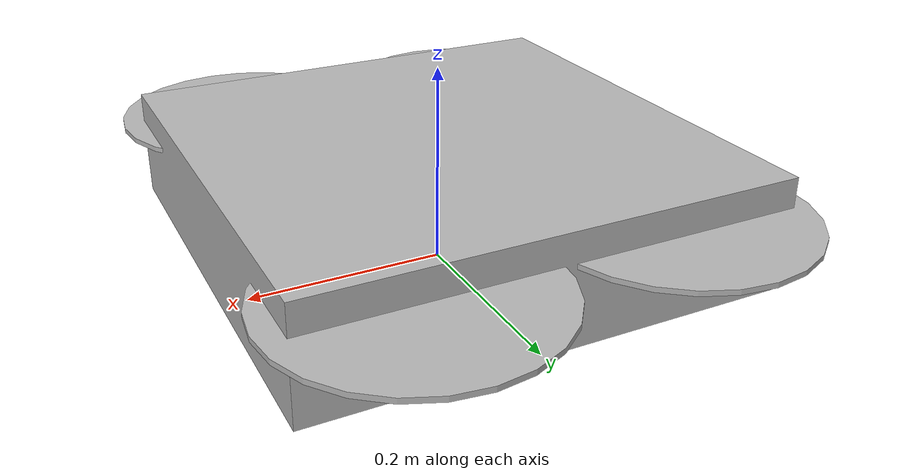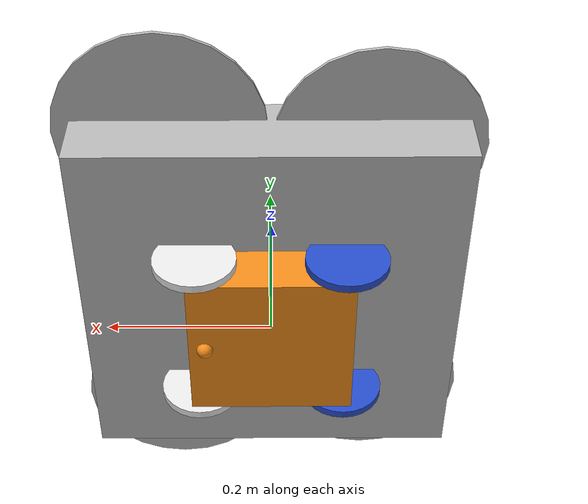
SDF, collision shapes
<?xml version="1.0"?>
<sdf version='1.6'>
  <model name='luffy'>
    <link name='base_link'>
      <pose frame=''>0 0 0 0 -0 0</pose>
      <inertial>
        <pose frame=''>1e-06 -0 -0.000651 0 -0 0</pose>
        <mass>0.510673</mass>
        <inertia>
          <ixx>0.000722388</ixx>
          <ixy>1.63791e-24</ixy>
          <ixz>-5.50202e-07</ixz>
          <iyy>0.00158624</iyy>
          <iyz>-1.38686e-13</iyz>
          <izz>0.00223359</izz>
        </inertia>
      </inertial>
      <collision name='base_link_collision'>
        <pose frame=''>0 0 0 0 -0 0</pose>
        <geometry>
          <box>
            <size>0.2 0.2 0.08</size>
          </box>
        </geometry>
        <surface>
          <contact>
            <ode/>
          </contact>
          <friction>
            <ode>
              <mu>0</mu>
              <mu2>0</mu2>
            </ode>
          </friction>
        </surface>
      </collision>
      <collision name='base_link_collision_1'>
        <pose frame=''>0.08 0 -0.04 0 -0 0</pose>
        <geometry>
          <sphere>
            <radius>0.01</radius>
          </sphere>
        </geometry>
        <surface>
          <contact>
            <ode/>
          </contact>
          <friction>
            <ode>
              <mu>0</mu>
              <mu2>0</mu2>
            </ode>
          </friction>
        </surface>
      </collision>

      <visual name='base_link_visual'>
        <pose frame=''>0 0 0 0 -0 0</pose>
        <geometry>
          <box>
            <size>0.2 0.2 0.08</size>
          </box>
        </geometry>
        <material>
          <script>
            <name>Gazebo/Orange</name>
            <uri>file://media/materials/scripts/gazebo.material</uri>
          </script>
        </material>
      </visual>
      <visual name='base_link_fixed_joint_lump__caster_visual_1'>
        <pose frame=''>0.08 0 -0.04 0 -0 0</pose>
        <geometry>
          <sphere>
            <radius>0.01</radius>
          </sphere>
        </geometry>
      </visual>
      <velocity_decay/>
      <gravity>1</gravity>
      <velocity_decay/>
      <sensor name='frontLeftCamera' type='camera'>
        <update_rate>0.4</update_rate>
        <camera name='frontLeftCamera'>
          <horizontal_fov>1.5708</horizontal_fov>
          <image>
            <width>1280</width>
            <height>720</height>
            <format>R8G8B8</format>
          </image>
          <clip>
            <near>0.01</near>
            <far>100</far>
          </clip>
          <noise>
            <type>gaussian</type>
            <mean>0</mean>
            <stddev>0</stddev>
          </noise>
        </camera>
        <plugin name='camera_plugin' filename='libgazebo_ros_camera.so'>
          <alwaysOn>1</alwaysOn>
          <updateRate>0.4</updateRate>
          <cameraName>sensors/frontLeftCamera</cameraName>
          <imageTopicName>image</imageTopicName>
          <cameraInfoTopicName>info</cameraInfoTopicName>
          <frameName>frontLeftCamera</frameName>
        </plugin>
        <pose>-0.25 -0.05 0.1 0 -0 3.14159</pose>
      </sensor>
      <sensor name='frontRightCamera' type='camera'>
        <update_rate>0.4</update_rate>
        <camera name='frontRightCamera'>
          <horizontal_fov>1.5708</horizontal_fov>
          <image>
            <width>1280</width>
            <height>720</height>
            <format>R8G8B8</format>
          </image>
          <clip>
            <near>0.01</near>
            <far>100</far>
          </clip>
          <noise>
            <type>gaussian</type>
            <mean>0</mean>
            <stddev>0</stddev>
          </noise>
        </camera>
        <plugin name='camera_plugin' filename='libgazebo_ros_camera.so'>
          <alwaysOn>1</alwaysOn>
          <updateRate>0.4</updateRate>
          <cameraName>sensors/frontRightCamera</cameraName>
          <imageTopicName>image</imageTopicName>
          <cameraInfoTopicName>info</cameraInfoTopicName>
          <frameName>frontRightCamera</frameName>
        </plugin>
        <pose>-0.25 0.05 0.1 0 -0 3.14159</pose>
      </sensor>
      <sensor name='frontUltrasonic' type='ray'>
        <update_rate>1</update_rate>
        <visualize>1</visualize>
        <ray>
          <scan>
            <horizontal>
              <samples>10</samples>
              <resolution>1</resolution>
              <min_angle>-0.05</min_angle>
              <max_angle>0.05</max_angle>
            </horizontal>
          </scan>
          <range>
            <min>0.02</min>
            <max>6</max>
            <resolution>0.03</resolution>
          </range>
        </ray>
        <plugin name='ultrasonic_plugin' filename='libgazebo_ros_range.so'>
          <gaussianNoise>0.0</gaussianNoise>
          <alwaysOn>1</alwaysOn>
          <updateRate>1</updateRate>
          <topicName>sensors/frontUltrasonic</topicName>
          <frameName>frontUltrasonic</frameName>
          <radiation>ultrasound</radiation>
          <fov>0.05--0.05</fov>
          <visualize>1</visualize>
        </plugin>
        <pose>-0.13 0 0 0 -0 3.14159</pose>
      </sensor>
      <sensor name='leftUltrasonic' type='ray'>
        <update_rate>1</update_rate>
        <visualize>1</visualize>
        <ray>
          <scan>
            <horizontal>
              <samples>10</samples>
              <resolution>1</resolution>
              <min_angle>-0.05</min_angle>
              <max_angle>0.05</max_angle>
            </horizontal>
          </scan>
          <range>
            <min>0.02</min>
            <max>6</max>
            <resolution>0.03</resolution>
          </range>
        </ray>
        <plugin name='ultrasonic_plugin' filename='libgazebo_ros_range.so'>
          <gaussianNoise>0.0</gaussianNoise>
          <alwaysOn>1</alwaysOn>
          <updateRate>1</updateRate>
          <topicName>sensors/leftUltrasonic</topicName>
          <frameName>leftUltrasonic</frameName>
          <radiation>ultrasound</radiation>
          <fov>0.05--0.05</fov>
          <visualize>1</visualize>
        </plugin>
        <pose>-0.13 -0.075 0 0 -0 2.61799</pose>
      </sensor>
      <sensor name='rightUltrasonic' type='ray'>
        <update_rate>1</update_rate>
        <visualize>1</visualize>
        <ray>
          <scan>
            <horizontal>
              <samples>10</samples>
              <resolution>1</resolution>
              <min_angle>-0.05</min_angle>
              <max_angle>0.05</max_angle>
            </horizontal>
          </scan>
          <range>
            <min>0.02</min>
            <max>6</max>
            <resolution>0.03</resolution>
          </range>
        </ray>
        <plugin name='ultrasonic_plugin' filename='libgazebo_ros_range.so'>
          <gaussianNoise>0.0</gaussianNoise>
          <alwaysOn>1</alwaysOn>
          <updateRate>1</updateRate>
          <topicName>sensors/rightUltrasonic</topicName>
          <frameName>rightUltrasonic</frameName>
          <radiation>ultrasound</radiation>
          <fov>0.05--0.05</fov>
          <visualize>1</visualize>
        </plugin>
        <pose>-0.13 0.075 0 0 0 -2.61799</pose>
      </sensor>
      <sensor name='visualCamera' type='camera'>
        <update_rate>15</update_rate>
        <camera name='visualCamera'>
          <horizontal_fov>1.75</horizontal_fov>
          <image>
            <width>1280</width>
            <height>720</height>
            <format>R8G8B8</format>
          </image>
          <clip>
            <near>0.001</near>
            <far>100</far>
          </clip>
          <noise>
            <type>gaussian</type>
            <mean>0</mean>
            <stddev>0</stddev>
          </noise>
        </camera>
        <plugin name='camera_plugin' filename='libgazebo_ros_camera.so'>
          <alwaysOn>1</alwaysOn>
          <updateRate>15</updateRate>
          <cameraName>sensors/visualCamera</cameraName>
          <imageTopicName>image</imageTopicName>
          <cameraInfoTopicName>info</cameraInfoTopicName>
          <frameName>visualCamera</frameName>
        </plugin>
        <pose>1.2 0 0.5 0 0.2 -3.13319</pose>
      </sensor>
    </link>
    <link name='left_wheel'>
      <pose frame=''>-0.09 0.105 0 0 -0 0</pose>
      <inertial>
        <pose frame=''>0 0 0 0 -0 0</pose>
        <mass>0.00333333</mass>
        <inertia>
          <ixx>4.16667e-06</ixx>
          <ixy>0</ixy>
          <ixz>0</ixz>
          <iyy>2.16049e-06</iyy>
          <iyz>0</iyz>
          <izz>2.16049e-06</izz>
        </inertia>
      </inertial>
      <collision name='left_wheel_collision'>
        <pose frame=''>0 0 0 1.57079 -0 0</pose>
        <geometry>
          <cylinder>
            <length>0.01</length>
            <radius>0.05</radius>
          </cylinder>
        </geometry>
        <surface>
          <contact>
            <ode/>
          </contact>
          <friction>
            <ode>
              <mu>1</mu>
              <mu2>1</mu2>
            </ode>
          </friction>
        </surface>
      </collision>
      <visual name='left_wheel_visual'>
        <pose frame=''>0 0 0 1.57079 -0 0</pose>
        <geometry>
          <cylinder>
            <length>0.01</length>
            <radius>0.05</radius>
          </cylinder>
        </geometry>
        <material>
          <script>
            <name>Gazebo/Blue</name>
            <uri>file://media/materials/scripts/gazebo.material</uri>
          </script>
        </material>
      </visual>
      <gravity>1</gravity>
      <velocity_decay/>
    </link>
    <joint name='left_wheel_joint' type='revolute'>
      <child>left_wheel</child>
      <parent>base_link</parent>
      <axis>
        <xyz>0 1 0</xyz>
        <limit>
          <effort>50</effort>
          <velocity>50</velocity>
          <lower>-1e+16</lower>
          <upper>1e+16</upper>
        </limit>
        <dynamics>
          <damping>0.1</damping>
          <friction>0.1</friction>
          <spring_reference>0</spring_reference>
          <spring_stiffness>0</spring_stiffness>
        </dynamics>
        <use_parent_model_frame>0</use_parent_model_frame>
      </axis>
    </joint>

    <link name='right_wheel'>
      <pose frame=''>-0.09 -0.105 0 0 -0 0</pose>
      <inertial>
        <pose frame=''>0 0 0 0 -0 0</pose>
        <mass>0.00333333</mass>
        <inertia>
          <ixx>4.16667e-06</ixx>
          <ixy>0</ixy>
          <ixz>0</ixz>
          <iyy>2.16049e-06</iyy>
          <iyz>0</iyz>
          <izz>2.16049e-06</izz>
        </inertia>
      </inertial>
      <collision name='right_wheel_collision'>
        <pose frame=''>0 0 0 1.57079 -0 0</pose>
        <geometry>
          <cylinder>
            <length>0.01</length>
            <radius>0.05</radius>
          </cylinder>
        </geometry>
        <surface>
          <contact>
            <ode/>
          </contact>
          <friction>
            <ode>
              <mu>1</mu>
              <mu2>1</mu2>
            </ode>
          </friction>
        </surface>
      </collision>
      <visual name='right_wheel_visual'>
        <pose frame=''>0 0 0 1.57079 -0 0</pose>
        <geometry>
          <cylinder>
            <length>0.01</length>
            <radius>0.05</radius>
          </cylinder>
        </geometry>
        <material>
          <script>
            <name>Gazebo/Blue</name>
            <uri>file://media/materials/scripts/gazebo.material</uri>
          </script>
        </material>
      </visual>
      <gravity>1</gravity>
      <velocity_decay/>
    </link>
    <joint name='right_wheel_joint' type='revolute'>
      <child>right_wheel</child>
      <parent>base_link</parent>
      <axis>
        <xyz>0 1 0</xyz>
        <limit>
          <effort>50</effort>
          <velocity>50</velocity>
          <lower>-1e+16</lower>
          <upper>1e+16</upper>
        </limit>
        <dynamics>
          <damping>0.1</damping>
          <friction>0.1</friction>
          <spring_reference>0</spring_reference>
          <spring_stiffness>0</spring_stiffness>
        </dynamics>
        <use_parent_model_frame>0</use_parent_model_frame>
      </axis>
    </joint>

    <link name='left_wheel2'>
      <pose frame=''>0.09 0.105 0 0 -0 0</pose>
      <inertial>
        <pose frame=''>0 0 0 0 -0 0</pose>
        <mass>0.00333333</mass>
        <inertia>
          <ixx>4.16667e-06</ixx>
          <ixy>0</ixy>
          <ixz>0</ixz>
          <iyy>2.16049e-06</iyy>
          <iyz>0</iyz>
          <izz>2.16049e-06</izz>
        </inertia>
      </inertial>
      <collision name='left_wheel_collision2'>
        <pose frame=''>0 0 0 1.57079 -0 0</pose>
        <geometry>
          <cylinder>
            <length>0.01</length>
            <radius>0.05</radius>
          </cylinder>
        </geometry>
        <surface>
          <contact>
            <ode/>
          </contact>
          <friction>
            <ode>
              <mu>1</mu>
              <mu2>1</mu2>
            </ode>
          </friction>
        </surface>
      </collision>
      <visual name='left_wheel_visual2'>
        <pose frame=''>0 0 0 1.57079 -0 0</pose>
        <geometry>
          <cylinder>
            <length>0.01</length>
            <radius>0.05</radius>
          </cylinder>
        </geometry>
        <material>
          <script>
            <name>Gazebo/White</name>
            <uri>file://media/materials/scripts/gazebo.material</uri>
          </script>
        </material>
      </visual>
      <gravity>1</gravity>
      <velocity_decay/>
    </link>
    <joint name='left_wheel_joint2' type='revolute'>
      <child>left_wheel2</child>
      <parent>base_link</parent>
      <axis>
        <xyz>0 1 0</xyz>
        <limit>
          <effort>50</effort>
          <velocity>50</velocity>
          <lower>-1e+16</lower>
          <upper>1e+16</upper>
        </limit>
        <dynamics>
          <damping>0.1</damping>
          <friction>0.1</friction>
          <spring_reference>0</spring_reference>
          <spring_stiffness>0</spring_stiffness>
        </dynamics>
        <use_parent_model_frame>0</use_parent_model_frame>
      </axis>
    </joint>

    <link name='right_wheel2'>
      <pose frame=''>0.09 -0.105 0 0 -0 0</pose>
      <inertial>
        <pose frame=''>0 0 0 0 -0 0</pose>
        <mass>0.00333333</mass>
        <inertia>
          <ixx>4.16667e-06</ixx>
          <ixy>0</ixy>
          <ixz>0</ixz>
          <iyy>2.16049e-06</iyy>
          <iyz>0</iyz>
          <izz>2.16049e-06</izz>
        </inertia>
      </inertial>
      <collision name='right_wheel_collision2'>
        <pose frame=''>0 0 0 1.57079 -0 0</pose>
        <geometry>
          <cylinder>
            <length>0.01</length>
            <radius>0.05</radius>
          </cylinder>
        </geometry>
        <surface>
          <contact>
            <ode/>
          </contact>
          <friction>
            <ode>
              <mu>1</mu>
              <mu2>1</mu2>
            </ode>
          </friction>
        </surface>
      </collision>
      <visual name='right_wheel_visual2'>
        <pose frame=''>0 0 0 1.57079 -0 0</pose>
        <geometry>
          <cylinder>
            <length>0.01</length>
            <radius>0.05</radius>
          </cylinder>
        </geometry>
        <material>
          <script>
            <name>Gazebo/White</name>
            <uri>file://media/materials/scripts/gazebo.material</uri>
          </script>
        </material>
      </visual>
      <gravity>1</gravity>
      <velocity_decay/>
    </link>
    <joint name='right_wheel_joint2' type='revolute'>
      <child>right_wheel2</child>
      <parent>base_link</parent>
      <axis>
        <xyz>0 1 0</xyz>
        <limit>
          <effort>50</effort>
          <velocity>50</velocity>
          <lower>-1e+16</lower>
          <upper>1e+16</upper>
        </limit>
        <dynamics>
          <damping>0.1</damping>
          <friction>0.1</friction>
          <spring_reference>0</spring_reference>
          <spring_stiffness>0</spring_stiffness>
        </dynamics>
        <use_parent_model_frame>0</use_parent_model_frame>
      </axis>
    </joint>

    <plugin name='skid_steer_drive_controller' filename='libgazebo_ros_skid_steer_drive.so'>
      <updateRate>100</updateRate>
      <robotNamespace>control/ground</robotNamespace>
      <leftFrontJoint>left_wheel_joint</leftFrontJoint>
      <rightFrontJoint>right_wheel_joint</rightFrontJoint>
      <leftRearJoint>left_wheel_joint2</leftRearJoint>
      <rightRearJoint>right_wheel_joint2</rightRearJoint>
      <wheelSeparation>0.16666666666666669</wheelSeparation>
      <wheelDiameter>0.1</wheelDiameter>
      <robotBaseFrame>base_link</robotBaseFrame>
      <torque>50</torque>
      <broadcastTF>1</broadcastTF>
      <commandTopic>cmd</commandTopic>
      <odometryTopic>odom</odometryTopic>
      <odometryFrame>odom</odometryFrame>
      <covariance_x>0.0001</covariance_x>
      <covariance_y>0.0001</covariance_y>
      <covariance_yaw>0.0001</covariance_yaw>
    </plugin>
    <include>
      <uri>model://iris</uri>
      <pose>0 0 0.08 0 0 0</pose>
    </include>

    <joint name='luffy_iris_joint' type='fixed'>
      <parent>base_link</parent>
      <child>iris::base_link</child>
      <pose>0 0 0 0 0 0</pose>
      <physics>
        <ode>
          <limit>
            <cfm>0</cfm>
            <erp>0.2</erp>
          </limit>
          <suspension>
            <cfm>0</cfm>
            <erp>0.2</erp>
          </suspension>
        </ode>
      </physics>
    </joint>

    <frame name='FrontLeftCamera2GroundCore' attached_to='frame_link'>
      <pose>-0.25 -0.05 0.1 0 -0 3.14159</pose>
    </frame>
    <frame name='frontLeftCamera' attached_to='FrontLeftCamera2GroundCore'/>
    <frame name='FrontRightCamera2GroundCore' attached_to='frame_link'>
      <pose>-0.25 0.05 0.1 0 -0 3.14159</pose>
    </frame>
    <frame name='frontRightCamera' attached_to='FrontRightCamera2GroundCore'/>
    <frame name='FrontUltrasonic2GroundCore' attached_to='frame_link'>
      <pose>-0.13 0 0 0 -0 3.14159</pose>
    </frame>
    <frame name='frontUltrasonic' attached_to='FrontUltrasonic2GroundCore'/>
    <frame name='LeftUltrasonic2GroundCore' attached_to='frame_link'>
      <pose>-0.13 -0.075 0 0 -0 2.61799</pose>
    </frame>
    <frame name='leftUltrasonic' attached_to='LeftUltrasonic2GroundCore'/>
    <frame name='RightUltrasonic2GroundCore' attached_to='frame_link'>
      <pose>-0.13 0.075 0 0 -0 -2.618</pose>
    </frame>
    <frame name='rightUltrasonic' attached_to='RightUltrasonic2GroundCore'/>
    <frame name='visualCamera_joint' attached_to='frame_link'>
      <pose>1.2 0 0.5 0 0.2 -3.13319</pose>
    </frame>
    <frame name='visualCamera' attached_to='visualCamera_joint'/>
    <frame name='frame_joint' attached_to='base_link'>
      <pose>0 0 0 0 -0 0</pose>
    </frame>
    <frame name='frame_link' attached_to='frame_joint'/>
  </model>
</sdf>

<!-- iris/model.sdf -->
<!-- DO NOT EDIT: Generated from iris.sdf.jinja -->
<sdf version='1.6'>
  <model name='iris'>
    <link name='base_link'>
      <pose>0 0 0 0 0 0</pose>
      <inertial>
        <pose>0 0 0 0 0 0</pose>
        <mass>1.5</mass>
        <inertia>
          <ixx>0.029125</ixx>
          <ixy>0</ixy>
          <ixz>0</ixz>
          <iyy>0.029125</iyy>
          <iyz>0</iyz>
          <izz>0.055225</izz>
        </inertia>
      </inertial>
      <collision name='base_link_inertia_collision'>
        <pose>0 0 0 0 0 0</pose>
        <geometry>
          <box>
            <size>0.47 0.47 0.11</size>
          </box>
        </geometry>
        <surface>
          <contact>
            <ode>
              <min_depth>0.001</min_depth>
              <max_vel>0</max_vel>
            </ode>
          </contact>
          <friction>
            <ode/>
          </friction>
        </surface>
      </collision>
      <visual name='base_link_inertia_visual'>
        <pose>0 0 0 0 0 0</pose>
        <geometry>
          <mesh>
            <scale>1 1 1</scale>
            <uri>model://iris/meshes/iris.stl</uri>
          </mesh>
        </geometry>
      </visual>
      <gravity>1</gravity>
      <velocity_decay/>
    </link>
    <link name='/imu_link'>
      <pose>0 0 0 0 0 0</pose>
      <inertial>
        <pose>0 0 0 0 0 0</pose>
        <mass>0.015</mass>
        <inertia>
          <ixx>1e-05</ixx>
          <ixy>0</ixy>
          <ixz>0</ixz>
          <iyy>1e-05</iyy>
          <iyz>0</iyz>
          <izz>1e-05</izz>
        </inertia>
      </inertial>
    </link>
    <joint name='/imu_joint' type='revolute'>
      <child>/imu_link</child>
      <parent>base_link</parent>
      <axis>
        <xyz>1 0 0</xyz>
        <limit>
          <lower>0</lower>
          <upper>0</upper>
          <effort>0</effort>
          <velocity>0</velocity>
        </limit>
        <dynamics>
          <spring_reference>0</spring_reference>
          <spring_stiffness>0</spring_stiffness>
        </dynamics>
        <use_parent_model_frame>1</use_parent_model_frame>
      </axis>
    </joint>
    <link name='rotor_0'>
      <pose>0.13 -0.22 0.023 0 0 0</pose>
      <inertial>
        <pose>0 0 0 0 0 0</pose>
        <mass>0.005</mass>
        <inertia>
          <ixx>9.75e-07</ixx>
          <ixy>0</ixy>
          <ixz>0</ixz>
          <iyy>0.000273104</iyy>
          <iyz>0</iyz>
          <izz>0.000274004</izz>
        </inertia>
      </inertial>
      <collision name='rotor_0_collision'>
        <pose>0 0 0 0 0 0</pose>
        <geometry>
          <cylinder>
            <length>0.005</length>
            <radius>0.128</radius>
          </cylinder>
        </geometry>
        <surface>
          <contact>
            <ode/>
          </contact>
          <friction>
            <ode/>
          </friction>
        </surface>
      </collision>
      <visual name='rotor_0_visual'>
        <pose>0 0 0 0 0 0</pose>
        <geometry>
          <mesh>
            <scale>1 1 1</scale>
            <uri>model://iris/meshes/iris_prop_ccw.dae</uri>
          </mesh>
        </geometry>
      </visual>
      <gravity>1</gravity>
      <velocity_decay/>
    </link>
    <joint name='rotor_0_joint' type='revolute'>
      <child>rotor_0</child>
      <parent>base_link</parent>
      <axis>
        <xyz>0 0 1</xyz>
        <limit>
          <lower>-1e+16</lower>
          <upper>1e+16</upper>
        </limit>
        <dynamics>
          <spring_reference>0</spring_reference>
          <spring_stiffness>0</spring_stiffness>
        </dynamics>
        <use_parent_model_frame>1</use_parent_model_frame>
      </axis>
    </joint>
    <link name='rotor_1'>
      <pose>-0.13 0.2 0.023 0 0 0</pose>
      <inertial>
        <pose>0 0 0 0 0 0</pose>
        <mass>0.005</mass>
        <inertia>
          <ixx>9.75e-07</ixx>
          <ixy>0</ixy>
          <ixz>0</ixz>
          <iyy>0.000273104</iyy>
          <iyz>0</iyz>
          <izz>0.000274004</izz>
        </inertia>
      </inertial>
      <collision name='rotor_1_collision'>
        <pose>0 0 0 0 0 0</pose>
        <geometry>
          <cylinder>
            <length>0.005</length>
            <radius>0.128</radius>
          </cylinder>
        </geometry>
        <surface>
          <contact>
            <ode/>
          </contact>
          <friction>
            <ode/>
          </friction>
        </surface>
      </collision>
      <visual name='rotor_1_visual'>
        <pose>0 0 0 0 0 0</pose>
        <geometry>
          <mesh>
            <scale>1 1 1</scale>
            <uri>model://iris/meshes/iris_prop_ccw.dae</uri>
          </mesh>
        </geometry>
      </visual>
      <gravity>1</gravity>
      <velocity_decay/>
    </link>
    <joint name='rotor_1_joint' type='revolute'>
      <child>rotor_1</child>
      <parent>base_link</parent>
      <axis>
        <xyz>0 0 1</xyz>
        <limit>
          <lower>-1e+16</lower>
          <upper>1e+16</upper>
        </limit>
        <dynamics>
          <spring_reference>0</spring_reference>
          <spring_stiffness>0</spring_stiffness>
        </dynamics>
        <use_parent_model_frame>1</use_parent_model_frame>
      </axis>
    </joint>
    <link name='rotor_2'>
      <pose>0.13 0.22 0.023 0 0 0</pose>
      <inertial>
        <pose>0 0 0 0 0 0</pose>
        <mass>0.005</mass>
        <inertia>
          <ixx>9.75e-07</ixx>
          <ixy>0</ixy>
          <ixz>0</ixz>
          <iyy>0.000273104</iyy>
          <iyz>0</iyz>
          <izz>0.000274004</izz>
        </inertia>
      </inertial>
      <collision name='rotor_2_collision'>
        <pose>0 0 0 0 0 0</pose>
        <geometry>
          <cylinder>
            <length>0.005</length>
            <radius>0.128</radius>
          </cylinder>
        </geometry>
        <surface>
          <contact>
            <ode/>
          </contact>
          <friction>
            <ode/>
          </friction>
        </surface>
      </collision>
      <visual name='rotor_2_visual'>
        <pose>0 0 0 0 0 0</pose>
        <geometry>
          <mesh>
            <scale>1 1 1</scale>
            <uri>model://iris/meshes/iris_prop_cw.dae</uri>
          </mesh>
        </geometry>
      </visual>
      <gravity>1</gravity>
      <velocity_decay/>
    </link>
    <joint name='rotor_2_joint' type='revolute'>
      <child>rotor_2</child>
      <parent>base_link</parent>
      <axis>
        <xyz>0 0 1</xyz>
        <limit>
          <lower>-1e+16</lower>
          <upper>1e+16</upper>
        </limit>
        <dynamics>
          <spring_reference>0</spring_reference>
          <spring_stiffness>0</spring_stiffness>
        </dynamics>
        <use_parent_model_frame>1</use_parent_model_frame>
      </axis>
    </joint>
    <link name='rotor_3'>
      <pose>-0.13 -0.2 0.023 0 0 0</pose>
      <inertial>
        <pose>0 0 0 0 0 0</pose>
        <mass>0.005</mass>
        <inertia>
          <ixx>9.75e-07</ixx>
          <ixy>0</ixy>
          <ixz>0</ixz>
          <iyy>0.000273104</iyy>
          <iyz>0</iyz>
          <izz>0.000274004</izz>
        </inertia>
      </inertial>
      <collision name='rotor_3_collision'>
        <pose>0 0 0 0 0 0</pose>
        <geometry>
          <cylinder>
            <length>0.005</length>
            <radius>0.128</radius>
          </cylinder>
        </geometry>
        <surface>
          <contact>
            <ode/>
          </contact>
          <friction>
            <ode/>
          </friction>
        </surface>
      </collision>
      <visual name='rotor_3_visual'>
        <pose>0 0 0 0 0 0</pose>
        <geometry>
          <mesh>
            <scale>1 1 1</scale>
            <uri>model://iris/meshes/iris_prop_cw.dae</uri>
          </mesh>
        </geometry>
      </visual>
      <gravity>1</gravity>
      <velocity_decay/>
    </link>
    <joint name='rotor_3_joint' type='revolute'>
      <child>rotor_3</child>
      <parent>base_link</parent>
      <axis>
        <xyz>0 0 1</xyz>
        <limit>
          <lower>-1e+16</lower>
          <upper>1e+16</upper>
        </limit>
        <dynamics>
          <spring_reference>0</spring_reference>
          <spring_stiffness>0</spring_stiffness>
        </dynamics>
        <use_parent_model_frame>1</use_parent_model_frame>
      </axis>
    </joint>
    <plugin name='rosbag' filename='libgazebo_multirotor_base_plugin.so'>
      <robotNamespace/>
      <linkName>base_link</linkName>
      <rotorVelocitySlowdownSim>10</rotorVelocitySlowdownSim>
    </plugin>
    <plugin name='front_right_motor_model' filename='libgazebo_motor_model.so'>
      <robotNamespace/>
      <jointName>rotor_0_joint</jointName>
      <linkName>rotor_0</linkName>
      <turningDirection>ccw</turningDirection>
      <timeConstantUp>0.0125</timeConstantUp>
      <timeConstantDown>0.025</timeConstantDown>
      <maxRotVelocity>1100</maxRotVelocity>
      <motorConstant>5.84e-06</motorConstant>
      <momentConstant>0.06</momentConstant>
      <commandSubTopic>/gazebo/command/motor_speed</commandSubTopic>
      <motorNumber>0</motorNumber>
      <rotorDragCoefficient>0.000175</rotorDragCoefficient>
      <rollingMomentCoefficient>1e-06</rollingMomentCoefficient>
      <motorSpeedPubTopic>/motor_speed/0</motorSpeedPubTopic>
      <rotorVelocitySlowdownSim>10</rotorVelocitySlowdownSim>
    </plugin>
    <plugin name='back_left_motor_model' filename='libgazebo_motor_model.so'>
      <robotNamespace/>
      <jointName>rotor_1_joint</jointName>
      <linkName>rotor_1</linkName>
      <turningDirection>ccw</turningDirection>
      <timeConstantUp>0.0125</timeConstantUp>
      <timeConstantDown>0.025</timeConstantDown>
      <maxRotVelocity>1100</maxRotVelocity>
      <motorConstant>5.84e-06</motorConstant>
      <momentConstant>0.06</momentConstant>
      <commandSubTopic>/gazebo/command/motor_speed</commandSubTopic>
      <motorNumber>1</motorNumber>
      <rotorDragCoefficient>0.000175</rotorDragCoefficient>
      <rollingMomentCoefficient>1e-06</rollingMomentCoefficient>
      <motorSpeedPubTopic>/motor_speed/1</motorSpeedPubTopic>
      <rotorVelocitySlowdownSim>10</rotorVelocitySlowdownSim>
    </plugin>
    <plugin name='front_left_motor_model' filename='libgazebo_motor_model.so'>
      <robotNamespace/>
      <jointName>rotor_2_joint</jointName>
      <linkName>rotor_2</linkName>
      <turningDirection>cw</turningDirection>
      <timeConstantUp>0.0125</timeConstantUp>
      <timeConstantDown>0.025</timeConstantDown>
      <maxRotVelocity>1100</maxRotVelocity>
      <motorConstant>5.84e-06</motorConstant>
      <momentConstant>0.06</momentConstant>
      <commandSubTopic>/gazebo/command/motor_speed</commandSubTopic>
      <motorNumber>2</motorNumber>
      <rotorDragCoefficient>0.000175</rotorDragCoefficient>
      <rollingMomentCoefficient>1e-06</rollingMomentCoefficient>
      <motorSpeedPubTopic>/motor_speed/2</motorSpeedPubTopic>
      <rotorVelocitySlowdownSim>10</rotorVelocitySlowdownSim>
    </plugin>
    <plugin name='back_right_motor_model' filename='libgazebo_motor_model.so'>
      <robotNamespace/>
      <jointName>rotor_3_joint</jointName>
      <linkName>rotor_3</linkName>
      <turningDirection>cw</turningDirection>
      <timeConstantUp>0.0125</timeConstantUp>
      <timeConstantDown>0.025</timeConstantDown>
      <maxRotVelocity>1100</maxRotVelocity>
      <motorConstant>5.84e-06</motorConstant>
      <momentConstant>0.06</momentConstant>
      <commandSubTopic>/gazebo/command/motor_speed</commandSubTopic>
      <motorNumber>3</motorNumber>
      <rotorDragCoefficient>0.000175</rotorDragCoefficient>
      <rollingMomentCoefficient>1e-06</rollingMomentCoefficient>
      <motorSpeedPubTopic>/motor_speed/3</motorSpeedPubTopic>
      <rotorVelocitySlowdownSim>10</rotorVelocitySlowdownSim>
    </plugin>
    <model name='gps0'>
      <link name='link'>
        <pose>0 0 0 0 0 0</pose>
        <inertial>
          <pose>0 0 0 0 0 0</pose>
          <mass>0.01</mass>
          <inertia>
            <ixx>2.1733e-06</ixx>
            <ixy>0</ixy>
            <ixz>0</ixz>
            <iyy>2.1733e-06</iyy>
            <iyz>0</iyz>
            <izz>1.8e-07</izz>
          </inertia>
        </inertial>
        <visual name='visual'>
          <geometry>
            <cylinder>
              <radius>0.01</radius>
              <length>0.002</length>
            </cylinder>
          </geometry>
        </visual>
        <sensor name='gps' type='gps'>
          <pose>0 0 0 0 0 0</pose>
          <plugin name='gps_plugin' filename='libgazebo_gps_plugin.so'>
            <robotNamespace/>
            <gpsNoise>1</gpsNoise>
            <gpsXYRandomWalk>2.0</gpsXYRandomWalk>
            <gpsZRandomWalk>4.0</gpsZRandomWalk>
            <gpsXYNoiseDensity>0.0002</gpsXYNoiseDensity>
            <gpsZNoiseDensity>0.0004</gpsZNoiseDensity>
            <gpsVXYNoiseDensity>0.2</gpsVXYNoiseDensity>
            <gpsVZNoiseDensity>0.4</gpsVZNoiseDensity>
          </plugin>
        </sensor>
      </link>
    </model>
    <joint name='gps0_joint' type='fixed'>
      <parent>base_link</parent>
      <child>gps0::link</child>
    </joint>
    <plugin name='groundtruth_plugin' filename='libgazebo_groundtruth_plugin.so'>
      <robotNamespace/>
    </plugin>
    <plugin name='magnetometer_plugin' filename='libgazebo_magnetometer_plugin.so'>
      <robotNamespace/>
      <pubRate>100</pubRate>
      <noiseDensity>0.0004</noiseDensity>
      <randomWalk>6.4e-06</randomWalk>
      <biasCorrelationTime>600</biasCorrelationTime>
      <magTopic>/mag</magTopic>
    </plugin>
    <plugin name='barometer_plugin' filename='libgazebo_barometer_plugin.so'>
      <robotNamespace/>
      <pubRate>50</pubRate>
      <baroTopic>/baro</baroTopic>
      <baroDriftPaPerSec>0</baroDriftPaPerSec>
    </plugin>
    <plugin name='mavlink_interface' filename='libgazebo_mavlink_interface.so'>
      <robotNamespace/>
      <imuSubTopic>/imu</imuSubTopic>
      <magSubTopic>/mag</magSubTopic>
      <baroSubTopic>/baro</baroSubTopic>
      <mavlink_addr>INADDR_ANY</mavlink_addr>
      <mavlink_tcp_port>{{ mavlink_tcp_port }}</mavlink_tcp_port>
      <mavlink_udp_port>{{ mavlink_udp_port }}</mavlink_udp_port>
      <serialEnabled>{{ serial_enabled }}</serialEnabled>
      <serialDevice>{{ serial_device }}</serialDevice>
      <baudRate>{{ serial_baudrate }}</baudRate>
      <qgc_addr>INADDR_ANY</qgc_addr>
      <qgc_udp_port>14550</qgc_udp_port>
      <sdk_addr>INADDR_ANY</sdk_addr>
      <sdk_udp_port>14540</sdk_udp_port>
      <hil_mode>{{ hil_mode }}</hil_mode>
      <hil_state_level>0</hil_state_level>
      <send_vision_estimation>0</send_vision_estimation>
      <send_odometry>1</send_odometry>
      <enable_lockstep>1</enable_lockstep>
      <use_tcp>1</use_tcp>
      <motorSpeedCommandPubTopic>/gazebo/command/motor_speed</motorSpeedCommandPubTopic>
      <control_channels>
        <channel name='rotor1'>
          <input_index>0</input_index>
          <input_offset>0</input_offset>
          <input_scaling>1000</input_scaling>
          <zero_position_disarmed>0</zero_position_disarmed>
          <zero_position_armed>100</zero_position_armed>
          <joint_control_type>velocity</joint_control_type>
        </channel>
        <channel name='rotor2'>
          <input_index>1</input_index>
          <input_offset>0</input_offset>
          <input_scaling>1000</input_scaling>
          <zero_position_disarmed>0</zero_position_disarmed>
          <zero_position_armed>100</zero_position_armed>
          <joint_control_type>velocity</joint_control_type>
        </channel>
        <channel name='rotor3'>
          <input_index>2</input_index>
          <input_offset>0</input_offset>
          <input_scaling>1000</input_scaling>
          <zero_position_disarmed>0</zero_position_disarmed>
          <zero_position_armed>100</zero_position_armed>
          <joint_control_type>velocity</joint_control_type>
        </channel>
        <channel name='rotor4'>
          <input_index>3</input_index>
          <input_offset>0</input_offset>
          <input_scaling>1000</input_scaling>
          <zero_position_disarmed>0</zero_position_disarmed>
          <zero_position_armed>100</zero_position_armed>
          <joint_control_type>velocity</joint_control_type>
        </channel>
        <channel name='rotor5'>
          <input_index>4</input_index>
          <input_offset>1</input_offset>
          <input_scaling>324.6</input_scaling>
          <zero_position_disarmed>0</zero_position_disarmed>
          <zero_position_armed>0</zero_position_armed>
          <joint_control_type>velocity</joint_control_type>
          <joint_control_pid>
            <p>0.1</p>
            <i>0</i>
            <d>0</d>
            <iMax>0.0</iMax>
            <iMin>0.0</iMin>
            <cmdMax>2</cmdMax>
            <cmdMin>-2</cmdMin>
          </joint_control_pid>
          <joint_name>zephyr_delta_wing::propeller_joint</joint_name>
        </channel>
        <channel name='rotor6'>
          <input_index>5</input_index>
          <input_offset>0</input_offset>
          <input_scaling>0.524</input_scaling>
          <zero_position_disarmed>0</zero_position_disarmed>
          <zero_position_armed>0</zero_position_armed>
          <joint_control_type>position</joint_control_type>
          <joint_name>zephyr_delta_wing::flap_left_joint</joint_name>
          <joint_control_pid>
            <p>10.0</p>
            <i>0</i>
            <d>0</d>
            <iMax>0</iMax>
            <iMin>0</iMin>
            <cmdMax>20</cmdMax>
            <cmdMin>-20</cmdMin>
          </joint_control_pid>
        </channel>
        <channel name='rotor7'>
          <input_index>6</input_index>
          <input_offset>0</input_offset>
          <input_scaling>0.524</input_scaling>
          <zero_position_disarmed>0</zero_position_disarmed>
          <zero_position_armed>0</zero_position_armed>
          <joint_control_type>position</joint_control_type>
          <joint_name>zephyr_delta_wing::flap_right_joint</joint_name>
          <joint_control_pid>
            <p>10.0</p>
            <i>0</i>
            <d>0</d>
            <iMax>0</iMax>
            <iMin>0</iMin>
            <cmdMax>20</cmdMax>
            <cmdMin>-20</cmdMin>
          </joint_control_pid>
        </channel>
        <channel name='rotor8'>
          <input_index>7</input_index>
          <input_offset>0</input_offset>
          <input_scaling>0.524</input_scaling>
          <zero_position_disarmed>0</zero_position_disarmed>
          <zero_position_armed>0</zero_position_armed>
          <joint_control_type>position</joint_control_type>
        </channel>
      </control_channels>
    </plugin>
    <static>0</static>
    <plugin name='rotors_gazebo_imu_plugin' filename='libgazebo_imu_plugin.so'>
      <robotNamespace/>
      <linkName>/imu_link</linkName>
      <imuTopic>/imu</imuTopic>
      <gyroscopeNoiseDensity>0.00018665</gyroscopeNoiseDensity>
      <gyroscopeRandomWalk>3.8785e-05</gyroscopeRandomWalk>
      <gyroscopeBiasCorrelationTime>1000.0</gyroscopeBiasCorrelationTime>
      <gyroscopeTurnOnBiasSigma>0.0087</gyroscopeTurnOnBiasSigma>
      <accelerometerNoiseDensity>0.00186</accelerometerNoiseDensity>
      <accelerometerRandomWalk>0.006</accelerometerRandomWalk>
      <accelerometerBiasCorrelationTime>300.0</accelerometerBiasCorrelationTime>
      <accelerometerTurnOnBiasSigma>0.196</accelerometerTurnOnBiasSigma>
    </plugin>
  </model>
</sdf>
